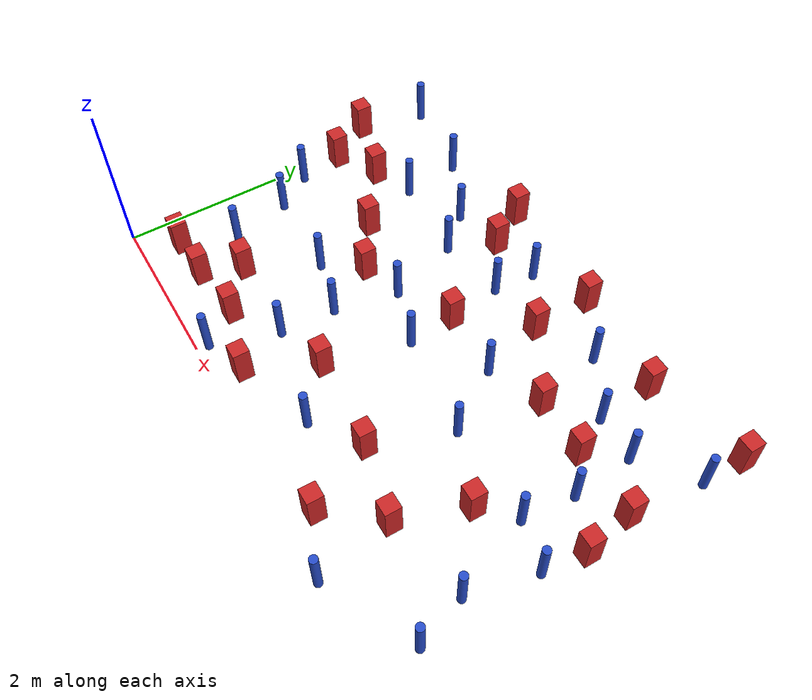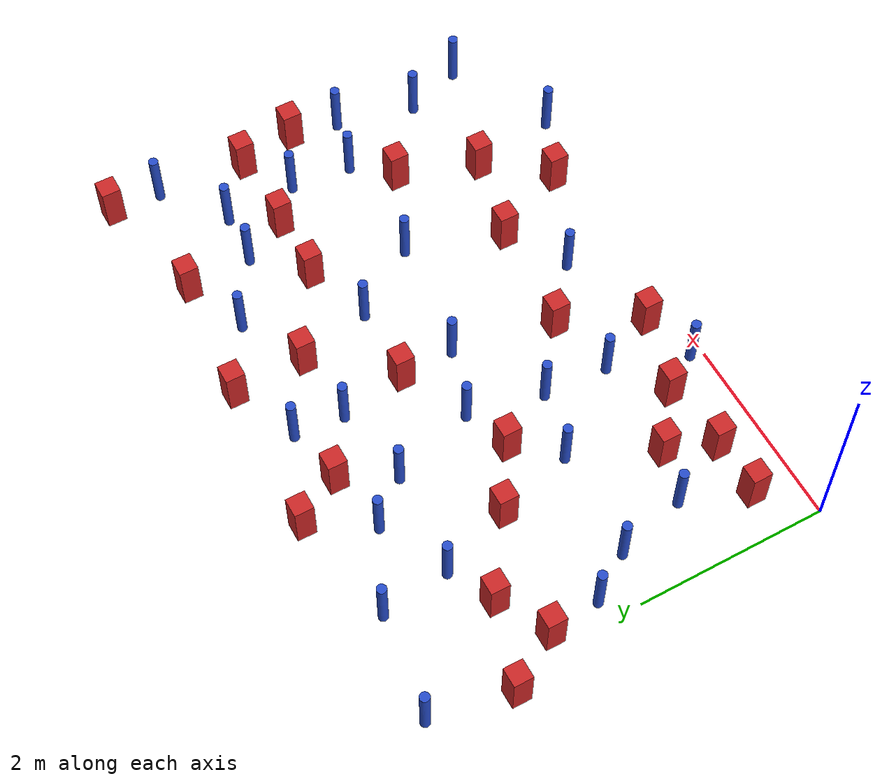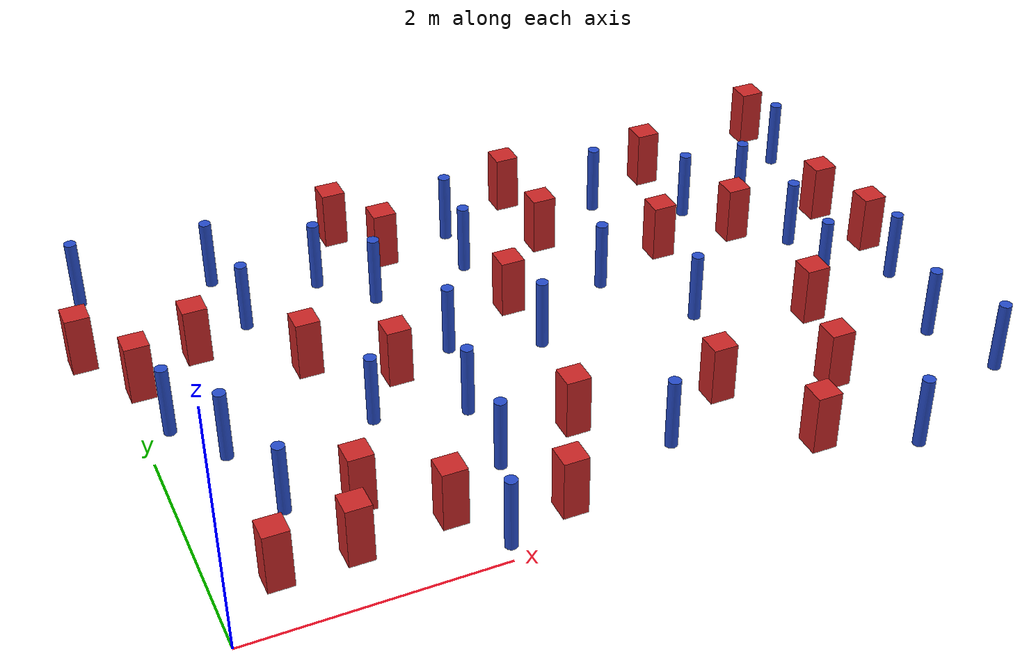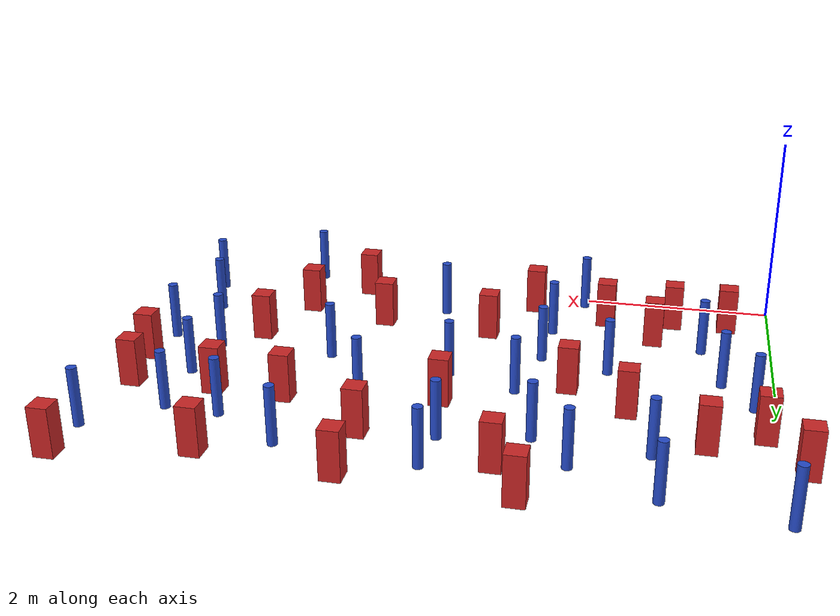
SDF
<sdf version="1.6">
 <model name="dense_2">
  <model name="pole_obstacle0">
   <static>true</static>
   <pose>4.51293915702 2.02923295959 2.88873142074e-08 -9.90536689683e-09 4.60219948993e-07 -1.20965994957e-07</pose>
   <link name="link">
    <pose>0 0 0.3 0 -0 0</pose>
    <inertial>
     <mass>1</mass>
     <inertia><ixx>0.145833</ixx><ixy>0</ixy><ixz>0</ixz><iyy>0.145833</iyy><iyz>0</iyz><izz>0.125</izz></inertia>
    </inertial>
    <collision name="collision">
     <geometry><cylinder><radius>0.05</radius><length>.6</length></cylinder></geometry>
    </collision>
    <visual name="visual">
     <geometry><cylinder><radius>0.05</radius><length>.6</length></cylinder></geometry>
     <material>
      <script><name>Gazebo/Blue</name><uri>file://media/materials/scripts/gazebo.material</uri></script>
     </material>
    </visual>
   </link>
  </model>
  <model name="square_post_obstacle4">
   <static>true</static>
   <pose>2.9893026464 1.14969682416 8.22691968438e-08 7.2212513382e-06 -7.54495500217e-07 2.29674213826e-05</pose>
   <link name="link">
    <pose>0 0 0.25 0 -0 0</pose>
    <inertial>
     <mass>100</mass>
     <inertia>
      <ixx>0.166667</ixx>
      <ixy>0</ixy>
      <ixz>0</ixz>
      <iyy>0.166667</iyy>
      <iyz>0</iyz>
      <izz>0.166667</izz>
     </inertia>
    </inertial>
    <collision name="collision"><geometry><box><size>.2 .2 .5</size></box></geometry></collision>
    <visual name="visual">
     <geometry><box><size>.2 .2 .5</size></box></geometry>
     <material>
      <script><name>Gazebo/Red</name><uri>file://media/materials/scripts/gazebo.material</uri></script>
     </material>
    </visual>
   </link>
  </model>
  <model name="square_post_obstacle7">
   <static>true</static>
   <pose>1.76672728972 0.576758571005 8.22691968438e-08 7.22125133819e-06 -7.54495500217e-07 2.29674213826e-05</pose>
   <link name="link">
    <pose>0 0 0.25 0 -0 0</pose>
    <inertial>
     <mass>100</mass>
     <inertia>
      <ixx>0.166667</ixx>
      <ixy>0</ixy>
      <ixz>0</ixz>
      <iyy>0.166667</iyy>
      <iyz>0</iyz>
      <izz>0.166667</izz>
     </inertia>
    </inertial>
    <collision name="collision"><geometry><box><size>.2 .2 .5</size></box></geometry></collision>
    <visual name="visual">
     <geometry><box><size>.2 .2 .5</size></box></geometry>
     <material>
      <script><name>Gazebo/Red</name><uri>file://media/materials/scripts/gazebo.material</uri></script>
     </material>
    </visual>
   </link>
  </model>
  <model name="square_post_obstacle11">
   <static>true</static>
   <pose>2.5807275553 0.337207331482 8.22691968438e-08 7.2212513382e-06 -7.54495500217e-07 2.29674213826e-05</pose>
   <link name="link">
    <pose>0 0 0.25 0 -0 0</pose>
    <inertial>
     <mass>100</mass>
     <inertia>
      <ixx>0.166667</ixx>
      <ixy>0</ixy>
      <ixz>0</ixz>
      <iyy>0.166667</iyy>
      <iyz>0</iyz>
      <izz>0.166667</izz>
     </inertia>
    </inertial>
    <collision name="collision"><geometry><box><size>.2 .2 .5</size></box></geometry></collision>
    <visual name="visual">
     <geometry><box><size>.2 .2 .5</size></box></geometry>
     <material>
      <script><name>Gazebo/Red</name><uri>file://media/materials/scripts/gazebo.material</uri></script>
     </material>
    </visual>
   </link>
  </model>
  <model name="square_post_obstacle12">
   <static>true</static>
   <pose>5.37687361299 1.67094948875 8.22691968438e-08 7.2212513382e-06 -7.54495500217e-07 2.29674213826e-05</pose>
   <link name="link">
    <pose>0 0 0.25 0 -0 0</pose>
    <inertial>
     <mass>100</mass>
     <inertia>
      <ixx>0.166667</ixx>
      <ixy>0</ixy>
      <ixz>0</ixz>
      <iyy>0.166667</iyy>
      <iyz>0</iyz>
      <izz>0.166667</izz>
     </inertia>
    </inertial>
    <collision name="collision"><geometry><box><size>.2 .2 .5</size></box></geometry></collision>
    <visual name="visual">
     <geometry><box><size>.2 .2 .5</size></box></geometry>
     <material>
      <script><name>Gazebo/Red</name><uri>file://media/materials/scripts/gazebo.material</uri></script>
     </material>
    </visual>
   </link>
  </model>
  <model name="pole_obstacle15">
   <static>true</static>
   <pose>1.03543532854 4.12226089961 2.88873142074e-08 -9.90536689905e-09 4.60219948988e-07 -1.20965994961e-07</pose>
   <link name="link">
    <pose>0 0 0.3 0 -0 0</pose>
    <inertial>
     <mass>1</mass>
     <inertia><ixx>0.145833</ixx><ixy>0</ixy><ixz>0</ixz><iyy>0.145833</iyy><iyz>0</iyz><izz>0.125</izz></inertia>
    </inertial>
    <collision name="collision">
     <geometry><cylinder><radius>0.05</radius><length>.6</length></cylinder></geometry>
    </collision>
    <visual name="visual">
     <geometry><cylinder><radius>0.05</radius><length>.6</length></cylinder></geometry>
     <material>
      <script><name>Gazebo/Blue</name><uri>file://media/materials/scripts/gazebo.material</uri></script>
     </material>
    </visual>
   </link>
  </model>
  <model name="square_post_obstacle25">
   <static>true</static>
   <pose>1.03732156511 0.49760889649 8.22691968438e-08 7.2212513382e-06 -7.54495500217e-07 2.29674213826e-05</pose>
   <link name="link">
    <pose>0 0 0.25 0 -0 0</pose>
    <inertial>
     <mass>100</mass>
     <inertia>
      <ixx>0.166667</ixx>
      <ixy>0</ixy>
      <ixz>0</ixz>
      <iyy>0.166667</iyy>
      <iyz>0</iyz>
      <izz>0.166667</izz>
     </inertia>
    </inertial>
    <collision name="collision"><geometry><box><size>.2 .2 .5</size></box></geometry></collision>
    <visual name="visual">
     <geometry><box><size>.2 .2 .5</size></box></geometry>
     <material>
      <script><name>Gazebo/Red</name><uri>file://media/materials/scripts/gazebo.material</uri></script>
     </material>
    </visual>
   </link>
  </model>
  <model name="pole_obstacle40">
   <static>true</static>
   <pose>1.1254228163 3.40366411227 2.88873142074e-08 -9.90536689791e-09 4.6021994899e-07 -1.20965994959e-07</pose>
   <link name="link">
    <pose>0 0 0.3 0 -0 0</pose>
    <inertial>
     <mass>1</mass>
     <inertia><ixx>0.145833</ixx><ixy>0</ixy><ixz>0</ixz><iyy>0.145833</iyy><iyz>0</iyz><izz>0.125</izz></inertia>
    </inertial>
    <collision name="collision">
     <geometry><cylinder><radius>0.05</radius><length>.6</length></cylinder></geometry>
    </collision>
    <visual name="visual">
     <geometry><cylinder><radius>0.05</radius><length>.6</length></cylinder></geometry>
     <material>
      <script><name>Gazebo/Blue</name><uri>file://media/materials/scripts/gazebo.material</uri></script>
     </material>
    </visual>
   </link>
  </model>
  <model name="pole_obstacle41">
   <static>true</static>
   <pose>5.74391420218 3.44088116287 2.88873142074e-08 -9.90536690245e-09 4.6021994898e-07 -1.20965994966e-07</pose>
   <link name="link">
    <pose>0 0 0.3 0 -0 0</pose>
    <inertial>
     <mass>1</mass>
     <inertia><ixx>0.145833</ixx><ixy>0</ixy><ixz>0</ixz><iyy>0.145833</iyy><iyz>0</iyz><izz>0.125</izz></inertia>
    </inertial>
    <collision name="collision">
     <geometry><cylinder><radius>0.05</radius><length>.6</length></cylinder></geometry>
    </collision>
    <visual name="visual">
     <geometry><cylinder><radius>0.05</radius><length>.6</length></cylinder></geometry>
     <material>
      <script><name>Gazebo/Blue</name><uri>file://media/materials/scripts/gazebo.material</uri></script>
     </material>
    </visual>
   </link>
  </model>
  <model name="square_post_obstacle45">
   <static>true</static>
   <pose>0.651753841996 3.17246568594 8.22691968438e-08 7.2212513382e-06 -7.54495500217e-07 2.29674213826e-05</pose>
   <link name="link">
    <pose>0 0 0.25 0 -0 0</pose>
    <inertial>
     <mass>100</mass>
     <inertia>
      <ixx>0.166667</ixx>
      <ixy>0</ixy>
      <ixz>0</ixz>
      <iyy>0.166667</iyy>
      <iyz>0</iyz>
      <izz>0.166667</izz>
     </inertia>
    </inertial>
    <collision name="collision"><geometry><box><size>.2 .2 .5</size></box></geometry></collision>
    <visual name="visual">
     <geometry><box><size>.2 .2 .5</size></box></geometry>
     <material>
      <script><name>Gazebo/Red</name><uri>file://media/materials/scripts/gazebo.material</uri></script>
     </material>
    </visual>
   </link>
  </model>
  <model name="pole_obstacle50">
   <static>true</static>
   <pose>2.2150086224 3.3212447633 2.88873142074e-08 -9.90536690232e-09 4.6021994898e-07 -1.20965994968e-07</pose>
   <link name="link">
    <pose>0 0 0.3 0 -0 0</pose>
    <inertial>
     <mass>1</mass>
     <inertia><ixx>0.145833</ixx><ixy>0</ixy><ixz>0</ixz><iyy>0.145833</iyy><iyz>0</iyz><izz>0.125</izz></inertia>
    </inertial>
    <collision name="collision">
     <geometry><cylinder><radius>0.05</radius><length>.6</length></cylinder></geometry>
    </collision>
    <visual name="visual">
     <geometry><cylinder><radius>0.05</radius><length>.6</length></cylinder></geometry>
     <material>
      <script><name>Gazebo/Blue</name><uri>file://media/materials/scripts/gazebo.material</uri></script>
     </material>
    </visual>
   </link>
  </model>
  <model name="square_post_obstacle54">
   <static>true</static>
   <pose>1.39793324621 2.6527842161 8.22691968438e-08 7.2212513382e-06 -7.54495500217e-07 2.29674213826e-05</pose>
   <link name="link">
    <pose>0 0 0.25 0 -0 0</pose>
    <inertial>
     <mass>100</mass>
     <inertia>
      <ixx>0.166667</ixx>
      <ixy>0</ixy>
      <ixz>0</ixz>
      <iyy>0.166667</iyy>
      <iyz>0</iyz>
      <izz>0.166667</izz>
     </inertia>
    </inertial>
    <collision name="collision"><geometry><box><size>.2 .2 .5</size></box></geometry></collision>
    <visual name="visual">
     <geometry><box><size>.2 .2 .5</size></box></geometry>
     <material>
      <script><name>Gazebo/Red</name><uri>file://media/materials/scripts/gazebo.material</uri></script>
     </material>
    </visual>
   </link>
  </model>
  <model name="square_post_obstacle64">
   <static>true</static>
   <pose>2.00207417969 2.27022836218 8.22691968438e-08 7.2212513382e-06 -7.54495500217e-07 2.29674213826e-05</pose>
   <link name="link">
    <pose>0 0 0.25 0 -0 0</pose>
    <inertial>
     <mass>100</mass>
     <inertia>
      <ixx>0.166667</ixx>
      <ixy>0</ixy>
      <ixz>0</ixz>
      <iyy>0.166667</iyy>
      <iyz>0</iyz>
      <izz>0.166667</izz>
     </inertia>
    </inertial>
    <collision name="collision"><geometry><box><size>.2 .2 .5</size></box></geometry></collision>
    <visual name="visual">
     <geometry><box><size>.2 .2 .5</size></box></geometry>
     <material>
      <script><name>Gazebo/Red</name><uri>file://media/materials/scripts/gazebo.material</uri></script>
     </material>
    </visual>
   </link>
  </model>
  <model name="square_post_obstacle76">
   <static>true</static>
   <pose>6.28206339309 3.00636175448 8.22691968438e-08 7.2212513382e-06 -7.54495500217e-07 2.29674213826e-05</pose>
   <link name="link">
    <pose>0 0 0.25 0 -0 0</pose>
    <inertial>
     <mass>100</mass>
     <inertia>
      <ixx>0.166667</ixx>
      <ixy>0</ixy>
      <ixz>0</ixz>
      <iyy>0.166667</iyy>
      <iyz>0</iyz>
      <izz>0.166667</izz>
     </inertia>
    </inertial>
    <collision name="collision"><geometry><box><size>.2 .2 .5</size></box></geometry></collision>
    <visual name="visual">
     <geometry><box><size>.2 .2 .5</size></box></geometry>
     <material>
      <script><name>Gazebo/Red</name><uri>file://media/materials/scripts/gazebo.material</uri></script>
     </material>
    </visual>
   </link>
  </model>
  <model name="pole_obstacle78">
   <static>true</static>
   <pose>0.203501877367 2.33106990192 2.88873142074e-08 -9.90536692545e-09 4.60219948925e-07 -1.2096599499e-07</pose>
   <link name="link">
    <pose>0 0 0.3 0 -0 0</pose>
    <inertial>
     <mass>1</mass>
     <inertia><ixx>0.145833</ixx><ixy>0</ixy><ixz>0</ixz><iyy>0.145833</iyy><iyz>0</iyz><izz>0.125</izz></inertia>
    </inertial>
    <collision name="collision">
     <geometry><cylinder><radius>0.05</radius><length>.6</length></cylinder></geometry>
    </collision>
    <visual name="visual">
     <geometry><cylinder><radius>0.05</radius><length>.6</length></cylinder></geometry>
     <material>
      <script><name>Gazebo/Blue</name><uri>file://media/materials/scripts/gazebo.material</uri></script>
     </material>
    </visual>
   </link>
  </model>
  <model name="square_post_obstacle78">
   <static>true</static>
   <pose>5.08093108655 0.841347274774 8.22691968438e-08 7.2212513382e-06 -7.54495500217e-07 2.29674213826e-05</pose>
   <link name="link">
    <pose>0 0 0.25 0 -0 0</pose>
    <inertial>
     <mass>100</mass>
     <inertia>
      <ixx>0.166667</ixx>
      <ixy>0</ixy>
      <ixz>0</ixz>
      <iyy>0.166667</iyy>
      <iyz>0</iyz>
      <izz>0.166667</izz>
     </inertia>
    </inertial>
    <collision name="collision"><geometry><box><size>.2 .2 .5</size></box></geometry></collision>
    <visual name="visual">
     <geometry><box><size>.2 .2 .5</size></box></geometry>
     <material>
      <script><name>Gazebo/Red</name><uri>file://media/materials/scripts/gazebo.material</uri></script>
     </material>
    </visual>
   </link>
  </model>
  <model name="pole_obstacle82">
   <static>true</static>
   <pose>4.01587517536 2.75673903796 2.88873142074e-08 -9.90536689988e-09 4.60219948986e-07 -1.20965994963e-07</pose>
   <link name="link">
    <pose>0 0 0.3 0 -0 0</pose>
    <inertial>
     <mass>1</mass>
     <inertia><ixx>0.145833</ixx><ixy>0</ixy><ixz>0</ixz><iyy>0.145833</iyy><iyz>0</iyz><izz>0.125</izz></inertia>
    </inertial>
    <collision name="collision">
     <geometry><cylinder><radius>0.05</radius><length>.6</length></cylinder></geometry>
    </collision>
    <visual name="visual">
     <geometry><cylinder><radius>0.05</radius><length>.6</length></cylinder></geometry>
     <material>
      <script><name>Gazebo/Blue</name><uri>file://media/materials/scripts/gazebo.material</uri></script>
     </material>
    </visual>
   </link>
  </model>
  <model name="square_post_obstacle80">
   <static>true</static>
   <pose>0.455643509742 0.483676884049 8.22691968438e-08 7.2212513382e-06 -7.54495500217e-07 2.29674213826e-05</pose>
   <link name="link">
    <pose>0 0 0.25 0 -0 0</pose>
    <inertial>
     <mass>100</mass>
     <inertia>
      <ixx>0.166667</ixx>
      <ixy>0</ixy>
      <ixz>0</ixz>
      <iyy>0.166667</iyy>
      <iyz>0</iyz>
      <izz>0.166667</izz>
     </inertia>
    </inertial>
    <collision name="collision"><geometry><box><size>.2 .2 .5</size></box></geometry></collision>
    <visual name="visual">
     <geometry><box><size>.2 .2 .5</size></box></geometry>
     <material>
      <script><name>Gazebo/Red</name><uri>file://media/materials/scripts/gazebo.material</uri></script>
     </material>
    </visual>
   </link>
  </model>
  <model name="pole_obstacle86">
   <static>true</static>
   <pose>5.25705738953 -0.0849788573613 2.88873142074e-08 -9.90536689832e-09 4.60219948989e-07 -1.20965994961e-07</pose>
   <link name="link">
    <pose>0 0 0.3 0 -0 0</pose>
    <inertial>
     <mass>1</mass>
     <inertia><ixx>0.145833</ixx><ixy>0</ixy><ixz>0</ixz><iyy>0.145833</iyy><iyz>0</iyz><izz>0.125</izz></inertia>
    </inertial>
    <collision name="collision">
     <geometry><cylinder><radius>0.05</radius><length>.6</length></cylinder></geometry>
    </collision>
    <visual name="visual">
     <geometry><cylinder><radius>0.05</radius><length>.6</length></cylinder></geometry>
     <material>
      <script><name>Gazebo/Blue</name><uri>file://media/materials/scripts/gazebo.material</uri></script>
     </material>
    </visual>
   </link>
  </model>
  <model name="pole_obstacle87">
   <static>true</static>
   <pose>6.34231356287 0.455687302859 2.88873142074e-08 -9.90536689483e-09 4.60219948998e-07 -1.20965994956e-07</pose>
   <link name="link">
    <pose>0 0 0.3 0 -0 0</pose>
    <inertial>
     <mass>1</mass>
     <inertia><ixx>0.145833</ixx><ixy>0</ixy><ixz>0</ixz><iyy>0.145833</iyy><iyz>0</iyz><izz>0.125</izz></inertia>
    </inertial>
    <collision name="collision">
     <geometry><cylinder><radius>0.05</radius><length>.6</length></cylinder></geometry>
    </collision>
    <visual name="visual">
     <geometry><cylinder><radius>0.05</radius><length>.6</length></cylinder></geometry>
     <material>
      <script><name>Gazebo/Blue</name><uri>file://media/materials/scripts/gazebo.material</uri></script>
     </material>
    </visual>
   </link>
  </model>
  <model name="pole_obstacle91">
   <static>true</static>
   <pose>3.21618884168 2.19915873179 2.88873142074e-08 -9.90536690232e-09 4.6021994898e-07 -1.20965994968e-07</pose>
   <link name="link">
    <pose>0 0 0.3 0 -0 0</pose>
    <inertial>
     <mass>1</mass>
     <inertia><ixx>0.145833</ixx><ixy>0</ixy><ixz>0</ixz><iyy>0.145833</iyy><iyz>0</iyz><izz>0.125</izz></inertia>
    </inertial>
    <collision name="collision">
     <geometry><cylinder><radius>0.05</radius><length>.6</length></cylinder></geometry>
    </collision>
    <visual name="visual">
     <geometry><cylinder><radius>0.05</radius><length>.6</length></cylinder></geometry>
     <material>
      <script><name>Gazebo/Blue</name><uri>file://media/materials/scripts/gazebo.material</uri></script>
     </material>
    </visual>
   </link>
  </model>
  <model name="square_post_obstacle83">
   <static>true</static>
   <pose>4.6980856419 3.0150080861 8.22691968438e-08 7.2212513382e-06 -7.54495500217e-07 2.29674213826e-05</pose>
   <link name="link">
    <pose>0 0 0.25 0 -0 0</pose>
    <inertial>
     <mass>100</mass>
     <inertia>
      <ixx>0.166667</ixx>
      <ixy>0</ixy>
      <ixz>0</ixz>
      <iyy>0.166667</iyy>
      <iyz>0</iyz>
      <izz>0.166667</izz>
     </inertia>
    </inertial>
    <collision name="collision"><geometry><box><size>.2 .2 .5</size></box></geometry></collision>
    <visual name="visual">
     <geometry><box><size>.2 .2 .5</size></box></geometry>
     <material>
      <script><name>Gazebo/Red</name><uri>file://media/materials/scripts/gazebo.material</uri></script>
     </material>
    </visual>
   </link>
  </model>
  <model name="square_post_obstacle89">
   <static>true</static>
   <pose>6.39162029417 4.45620203469 8.22691968438e-08 7.2212513382e-06 -7.54495500217e-07 2.29674213826e-05</pose>
   <link name="link">
    <pose>0 0 0.25 0 -0 0</pose>
    <inertial>
     <mass>100</mass>
     <inertia>
      <ixx>0.166667</ixx>
      <ixy>0</ixy>
      <ixz>0</ixz>
      <iyy>0.166667</iyy>
      <iyz>0</iyz>
      <izz>0.166667</izz>
     </inertia>
    </inertial>
    <collision name="collision"><geometry><box><size>.2 .2 .5</size></box></geometry></collision>
    <visual name="visual">
     <geometry><box><size>.2 .2 .5</size></box></geometry>
     <material>
      <script><name>Gazebo/Red</name><uri>file://media/materials/scripts/gazebo.material</uri></script>
     </material>
    </visual>
   </link>
  </model>
  <model name="pole_obstacle102">
   <static>true</static>
   <pose>3.56580393262 0.659137649616 2.88873142074e-08 -9.90536689285e-09 4.60219949002e-07 -1.20965994953e-07</pose>
   <link name="link">
    <pose>0 0 0.3 0 -0 0</pose>
    <inertial>
     <mass>1</mass>
     <inertia><ixx>0.145833</ixx><ixy>0</ixy><ixz>0</ixz><iyy>0.145833</iyy><iyz>0</iyz><izz>0.125</izz></inertia>
    </inertial>
    <collision name="collision">
     <geometry><cylinder><radius>0.05</radius><length>.6</length></cylinder></geometry>
    </collision>
    <visual name="visual">
     <geometry><cylinder><radius>0.05</radius><length>.6</length></cylinder></geometry>
     <material>
      <script><name>Gazebo/Blue</name><uri>file://media/materials/scripts/gazebo.material</uri></script>
     </material>
    </visual>
   </link>
  </model>
  <model name="square_post_obstacle94">
   <static>true</static>
   <pose>3.80946990364 3.54113547055 8.22691968438e-08 7.2212513382e-06 -7.54495500217e-07 2.29674213826e-05</pose>
   <link name="link">
    <pose>0 0 0.25 0 -0 0</pose>
    <inertial>
     <mass>100</mass>
     <inertia>
      <ixx>0.166667</ixx>
      <ixy>0</ixy>
      <ixz>0</ixz>
      <iyy>0.166667</iyy>
      <iyz>0</iyz>
      <izz>0.166667</izz>
     </inertia>
    </inertial>
    <collision name="collision"><geometry><box><size>.2 .2 .5</size></box></geometry></collision>
    <visual name="visual">
     <geometry><box><size>.2 .2 .5</size></box></geometry>
     <material>
      <script><name>Gazebo/Red</name><uri>file://media/materials/scripts/gazebo.material</uri></script>
     </material>
    </visual>
   </link>
  </model>
  <model name="square_post_obstacle101">
   <static>true</static>
   <pose>3.79438662336 4.29784079258 8.22691968438e-08 7.2212513382e-06 -7.54495500217e-07 2.29674213826e-05</pose>
   <link name="link">
    <pose>0 0 0.25 0 -0 0</pose>
    <inertial>
     <mass>100</mass>
     <inertia>
      <ixx>0.166667</ixx>
      <ixy>0</ixy>
      <ixz>0</ixz>
      <iyy>0.166667</iyy>
      <iyz>0</iyz>
      <izz>0.166667</izz>
     </inertia>
    </inertial>
    <collision name="collision"><geometry><box><size>.2 .2 .5</size></box></geometry></collision>
    <visual name="visual">
     <geometry><box><size>.2 .2 .5</size></box></geometry>
     <material>
      <script><name>Gazebo/Red</name><uri>file://media/materials/scripts/gazebo.material</uri></script>
     </material>
    </visual>
   </link>
  </model>
  <model name="square_post_obstacle107">
   <static>true</static>
   <pose>5.13730924741 4.16825675708 8.22691968438e-08 7.2212513382e-06 -7.54495500217e-07 2.29674213826e-05</pose>
   <link name="link">
    <pose>0 0 0.25 0 -0 0</pose>
    <inertial>
     <mass>100</mass>
     <inertia>
      <ixx>0.166667</ixx>
      <ixy>0</ixy>
      <ixz>0</ixz>
      <iyy>0.166667</iyy>
      <iyz>0</iyz>
      <izz>0.166667</izz>
     </inertia>
    </inertial>
    <collision name="collision"><geometry><box><size>.2 .2 .5</size></box></geometry></collision>
    <visual name="visual">
     <geometry><box><size>.2 .2 .5</size></box></geometry>
     <material>
      <script><name>Gazebo/Red</name><uri>file://media/materials/scripts/gazebo.material</uri></script>
     </material>
    </visual>
   </link>
  </model>
  <model name="pole_obstacle135">
   <static>true</static>
   <pose>4.49271970296 3.89093577603 2.88873142074e-08 -9.90536690245e-09 4.6021994898e-07 -1.20965994966e-07</pose>
   <link name="link">
    <pose>0 0 0.3 0 -0 0</pose>
    <inertial>
     <mass>1</mass>
     <inertia><ixx>0.145833</ixx><ixy>0</ixy><ixz>0</ixz><iyy>0.145833</iyy><iyz>0</iyz><izz>0.125</izz></inertia>
    </inertial>
    <collision name="collision">
     <geometry><cylinder><radius>0.05</radius><length>.6</length></cylinder></geometry>
    </collision>
    <visual name="visual">
     <geometry><cylinder><radius>0.05</radius><length>.6</length></cylinder></geometry>
     <material>
      <script><name>Gazebo/Blue</name><uri>file://media/materials/scripts/gazebo.material</uri></script>
     </material>
    </visual>
   </link>
  </model>
  <model name="pole_obstacle138">
   <static>true</static>
   <pose>2.31355740847 0.957202852371 2.88873142074e-08 -9.90536689701e-09 4.60219948992e-07 -1.20965994959e-07</pose>
   <link name="link">
    <pose>0 0 0.3 0 -0 0</pose>
    <inertial>
     <mass>1</mass>
     <inertia><ixx>0.145833</ixx><ixy>0</ixy><ixz>0</ixz><iyy>0.145833</iyy><iyz>0</iyz><izz>0.125</izz></inertia>
    </inertial>
    <collision name="collision">
     <geometry><cylinder><radius>0.05</radius><length>.6</length></cylinder></geometry>
    </collision>
    <visual name="visual">
     <geometry><cylinder><radius>0.05</radius><length>.6</length></cylinder></geometry>
     <material>
      <script><name>Gazebo/Blue</name><uri>file://media/materials/scripts/gazebo.material</uri></script>
     </material>
    </visual>
   </link>
  </model>
  <model name="square_post_obstacle121">
   <static>true</static>
   <pose>3.1803211415 2.78216624069 8.22691968438e-08 7.2212513382e-06 -7.54495500217e-07 2.29674213826e-05</pose>
   <link name="link">
    <pose>0 0 0.25 0 -0 0</pose>
    <inertial>
     <mass>100</mass>
     <inertia>
      <ixx>0.166667</ixx>
      <ixy>0</ixy>
      <ixz>0</ixz>
      <iyy>0.166667</iyy>
      <iyz>0</iyz>
      <izz>0.166667</izz>
     </inertia>
    </inertial>
    <collision name="collision"><geometry><box><size>.2 .2 .5</size></box></geometry></collision>
    <visual name="visual">
     <geometry><box><size>.2 .2 .5</size></box></geometry>
     <material>
      <script><name>Gazebo/Red</name><uri>file://media/materials/scripts/gazebo.material</uri></script>
     </material>
    </visual>
   </link>
  </model>
  <model name="square_post_obstacle123">
   <static>true</static>
   <pose>0.124385165504 2.88883878161 8.22691968438e-08 7.2212513382e-06 -7.54495500217e-07 2.29674213826e-05</pose>
   <link name="link">
    <pose>0 0 0.25 0 -0 0</pose>
    <inertial>
     <mass>100</mass>
     <inertia>
      <ixx>0.166667</ixx>
      <ixy>0</ixy>
      <ixz>0</ixz>
      <iyy>0.166667</iyy>
      <iyz>0</iyz>
      <izz>0.166667</izz>
     </inertia>
    </inertial>
    <collision name="collision"><geometry><box><size>.2 .2 .5</size></box></geometry></collision>
    <visual name="visual">
     <geometry><box><size>.2 .2 .5</size></box></geometry>
     <material>
      <script><name>Gazebo/Red</name><uri>file://media/materials/scripts/gazebo.material</uri></script>
     </material>
    </visual>
   </link>
  </model>
  <model name="square_post_obstacle129">
   <static>true</static>
   <pose>1.23033064791 0.987752622683 8.22691968438e-08 7.2212513382e-06 -7.54495500217e-07 2.29674213826e-05</pose>
   <link name="link">
    <pose>0 0 0.25 0 -0 0</pose>
    <inertial>
     <mass>100</mass>
     <inertia>
      <ixx>0.166667</ixx>
      <ixy>0</ixy>
      <ixz>0</ixz>
      <iyy>0.166667</iyy>
      <iyz>0</iyz>
      <izz>0.166667</izz>
     </inertia>
    </inertial>
    <collision name="collision"><geometry><box><size>.2 .2 .5</size></box></geometry></collision>
    <visual name="visual">
     <geometry><box><size>.2 .2 .5</size></box></geometry>
     <material>
      <script><name>Gazebo/Red</name><uri>file://media/materials/scripts/gazebo.material</uri></script>
     </material>
    </visual>
   </link>
  </model>
  <model name="pole_obstacle147">
   <static>true</static>
   <pose>5.18682617834 3.47356428697 2.88873142074e-08 -9.90536690245e-09 4.6021994898e-07 -1.20965994966e-07</pose>
   <link name="link">
    <pose>0 0 0.3 0 -0 0</pose>
    <inertial>
     <mass>1</mass>
     <inertia><ixx>0.145833</ixx><ixy>0</ixy><ixz>0</ixz><iyy>0.145833</iyy><iyz>0</iyz><izz>0.125</izz></inertia>
    </inertial>
    <collision name="collision">
     <geometry><cylinder><radius>0.05</radius><length>.6</length></cylinder></geometry>
    </collision>
    <visual name="visual">
     <geometry><cylinder><radius>0.05</radius><length>.6</length></cylinder></geometry>
     <material>
      <script><name>Gazebo/Blue</name><uri>file://media/materials/scripts/gazebo.material</uri></script>
     </material>
    </visual>
   </link>
  </model>
  <model name="square_post_obstacle137">
   <static>true</static>
   <pose>4.1720260583 1.05422881319 8.22691968438e-08 7.2212513382e-06 -7.54495500217e-07 2.29674213826e-05</pose>
   <link name="link">
    <pose>0 0 0.25 0 -0 0</pose>
    <inertial>
     <mass>100</mass>
     <inertia>
      <ixx>0.166667</ixx>
      <ixy>0</ixy>
      <ixz>0</ixz>
      <iyy>0.166667</iyy>
      <iyz>0</iyz>
      <izz>0.166667</izz>
     </inertia>
    </inertial>
    <collision name="collision"><geometry><box><size>.2 .2 .5</size></box></geometry></collision>
    <visual name="visual">
     <geometry><box><size>.2 .2 .5</size></box></geometry>
     <material>
      <script><name>Gazebo/Red</name><uri>file://media/materials/scripts/gazebo.material</uri></script>
     </material>
    </visual>
   </link>
  </model>
  <model name="pole_obstacle149">
   <static>true</static>
   <pose>0.512354617132 1.87911266087 2.88873142074e-08 -9.90536690151e-09 4.60219948982e-07 -1.20965994965e-07</pose>
   <link name="link">
    <pose>0 0 0.3 0 -0 0</pose>
    <inertial>
     <mass>1</mass>
     <inertia><ixx>0.145833</ixx><ixy>0</ixy><ixz>0</ixz><iyy>0.145833</iyy><iyz>0</iyz><izz>0.125</izz></inertia>
    </inertial>
    <collision name="collision">
     <geometry><cylinder><radius>0.05</radius><length>.6</length></cylinder></geometry>
    </collision>
    <visual name="visual">
     <geometry><cylinder><radius>0.05</radius><length>.6</length></cylinder></geometry>
     <material>
      <script><name>Gazebo/Blue</name><uri>file://media/materials/scripts/gazebo.material</uri></script>
     </material>
    </visual>
   </link>
  </model>
  <model name="pole_obstacle150">
   <static>true</static>
   <pose>-0.0423141037041 4.27244263458 2.88873142074e-08 -9.90536689643e-09 4.60219948994e-07 -1.20965994959e-07</pose>
   <link name="link">
    <pose>0 0 0.3 0 -0 0</pose>
    <inertial>
     <mass>1</mass>
     <inertia><ixx>0.145833</ixx><ixy>0</ixy><ixz>0</ixz><iyy>0.145833</iyy><iyz>0</iyz><izz>0.125</izz></inertia>
    </inertial>
    <collision name="collision">
     <geometry><cylinder><radius>0.05</radius><length>.6</length></cylinder></geometry>
    </collision>
    <visual name="visual">
     <geometry><cylinder><radius>0.05</radius><length>.6</length></cylinder></geometry>
     <material>
      <script><name>Gazebo/Blue</name><uri>file://media/materials/scripts/gazebo.material</uri></script>
     </material>
    </visual>
   </link>
  </model>
  <model name="pole_obstacle151">
   <static>true</static>
   <pose>2.50656428758 2.43183259265 2.88873142074e-08 -9.90536690232e-09 4.6021994898e-07 -1.20965994968e-07</pose>
   <link name="link">
    <pose>0 0 0.3 0 -0 0</pose>
    <inertial>
     <mass>1</mass>
     <inertia><ixx>0.145833</ixx><ixy>0</ixy><ixz>0</ixz><iyy>0.145833</iyy><iyz>0</iyz><izz>0.125</izz></inertia>
    </inertial>
    <collision name="collision">
     <geometry><cylinder><radius>0.05</radius><length>.6</length></cylinder></geometry>
    </collision>
    <visual name="visual">
     <geometry><cylinder><radius>0.05</radius><length>.6</length></cylinder></geometry>
     <material>
      <script><name>Gazebo/Blue</name><uri>file://media/materials/scripts/gazebo.material</uri></script>
     </material>
    </visual>
   </link>
  </model>
  <model name="pole_obstacle153">
   <static>true</static>
   <pose>3.06979076151 3.4708507764 2.88873142074e-08 -9.90536690232e-09 4.6021994898e-07 -1.20965994968e-07</pose>
   <link name="link">
    <pose>0 0 0.3 0 -0 0</pose>
    <inertial>
     <mass>1</mass>
     <inertia><ixx>0.145833</ixx><ixy>0</ixy><ixz>0</ixz><iyy>0.145833</iyy><iyz>0</iyz><izz>0.125</izz></inertia>
    </inertial>
    <collision name="collision">
     <geometry><cylinder><radius>0.05</radius><length>.6</length></cylinder></geometry>
    </collision>
    <visual name="visual">
     <geometry><cylinder><radius>0.05</radius><length>.6</length></cylinder></geometry>
     <material>
      <script><name>Gazebo/Blue</name><uri>file://media/materials/scripts/gazebo.material</uri></script>
     </material>
    </visual>
   </link>
  </model>
  <model name="pole_obstacle154">
   <static>true</static>
   <pose>1.84044727119 3.73817627601 2.88873142074e-08 -9.90536689791e-09 4.6021994899e-07 -1.20965994959e-07</pose>
   <link name="link">
    <pose>0 0 0.3 0 -0 0</pose>
    <inertial>
     <mass>1</mass>
     <inertia><ixx>0.145833</ixx><ixy>0</ixy><ixz>0</ixz><iyy>0.145833</iyy><iyz>0</iyz><izz>0.125</izz></inertia>
    </inertial>
    <collision name="collision">
     <geometry><cylinder><radius>0.05</radius><length>.6</length></cylinder></geometry>
    </collision>
    <visual name="visual">
     <geometry><cylinder><radius>0.05</radius><length>.6</length></cylinder></geometry>
     <material>
      <script><name>Gazebo/Blue</name><uri>file://media/materials/scripts/gazebo.material</uri></script>
     </material>
    </visual>
   </link>
  </model>
  <model name="square_post_obstacle153">
   <static>true</static>
   <pose>2.19668017657 4.3630407731 8.22691968438e-08 7.2212513382e-06 -7.54495500217e-07 2.29674213826e-05</pose>
   <link name="link">
    <pose>0 0 0.25 0 -0 0</pose>
    <inertial>
     <mass>100</mass>
     <inertia>
      <ixx>0.166667</ixx>
      <ixy>0</ixy>
      <ixz>0</ixz>
      <iyy>0.166667</iyy>
      <iyz>0</iyz>
      <izz>0.166667</izz>
     </inertia>
    </inertial>
    <collision name="collision"><geometry><box><size>.2 .2 .5</size></box></geometry></collision>
    <visual name="visual">
     <geometry><box><size>.2 .2 .5</size></box></geometry>
     <material>
      <script><name>Gazebo/Red</name><uri>file://media/materials/scripts/gazebo.material</uri></script>
     </material>
    </visual>
   </link>
  </model>
  <model name="pole_obstacle161">
   <static>true</static>
   <pose>5.80407923226 2.67867637156 2.88873142074e-08 -9.90536690245e-09 4.6021994898e-07 -1.20965994966e-07</pose>
   <link name="link">
    <pose>0 0 0.3 0 -0 0</pose>
    <inertial>
     <mass>1</mass>
     <inertia><ixx>0.145833</ixx><ixy>0</ixy><ixz>0</ixz><iyy>0.145833</iyy><iyz>0</iyz><izz>0.125</izz></inertia>
    </inertial>
    <collision name="collision">
     <geometry><cylinder><radius>0.05</radius><length>.6</length></cylinder></geometry>
    </collision>
    <visual name="visual">
     <geometry><cylinder><radius>0.05</radius><length>.6</length></cylinder></geometry>
     <material>
      <script><name>Gazebo/Blue</name><uri>file://media/materials/scripts/gazebo.material</uri></script>
     </material>
    </visual>
   </link>
  </model>
  <model name="pole_obstacle166">
   <static>true</static>
   <pose>6.12990611764 1.06097854878 2.88873142074e-08 -9.90536689445e-09 4.60219948999e-07 -1.20965994956e-07</pose>
   <link name="link">
    <pose>0 0 0.3 0 -0 0</pose>
    <inertial>
     <mass>1</mass>
     <inertia><ixx>0.145833</ixx><ixy>0</ixy><ixz>0</ixz><iyy>0.145833</iyy><iyz>0</iyz><izz>0.125</izz></inertia>
    </inertial>
    <collision name="collision">
     <geometry><cylinder><radius>0.05</radius><length>.6</length></cylinder></geometry>
    </collision>
    <visual name="visual">
     <geometry><cylinder><radius>0.05</radius><length>.6</length></cylinder></geometry>
     <material>
      <script><name>Gazebo/Blue</name><uri>file://media/materials/scripts/gazebo.material</uri></script>
     </material>
    </visual>
   </link>
  </model>
  <model name="square_post_obstacle159">
   <static>true</static>
   <pose>5.41573912442 3.00063896298 8.22691968438e-08 7.2212513382e-06 -7.54495500217e-07 2.29674213826e-05</pose>
   <link name="link">
    <pose>0 0 0.25 0 -0 0</pose>
    <inertial>
     <mass>100</mass>
     <inertia>
      <ixx>0.166667</ixx>
      <ixy>0</ixy>
      <ixz>0</ixz>
      <iyy>0.166667</iyy>
      <iyz>0</iyz>
      <izz>0.166667</izz>
     </inertia>
    </inertial>
    <collision name="collision"><geometry><box><size>.2 .2 .5</size></box></geometry></collision>
    <visual name="visual">
     <geometry><box><size>.2 .2 .5</size></box></geometry>
     <material>
      <script><name>Gazebo/Red</name><uri>file://media/materials/scripts/gazebo.material</uri></script>
     </material>
    </visual>
   </link>
  </model>
  <model name="pole_obstacle167">
   <static>true</static>
   <pose>0.716878057807 1.13723842153 2.88873142074e-08 -9.90536689855e-09 4.60219948989e-07 -1.20965994962e-07</pose>
   <link name="link">
    <pose>0 0 0.3 0 -0 0</pose>
    <inertial>
     <mass>1</mass>
     <inertia><ixx>0.145833</ixx><ixy>0</ixy><ixz>0</ixz><iyy>0.145833</iyy><iyz>0</iyz><izz>0.125</izz></inertia>
    </inertial>
    <collision name="collision">
     <geometry><cylinder><radius>0.05</radius><length>.6</length></cylinder></geometry>
    </collision>
    <visual name="visual">
     <geometry><cylinder><radius>0.05</radius><length>.6</length></cylinder></geometry>
     <material>
      <script><name>Gazebo/Blue</name><uri>file://media/materials/scripts/gazebo.material</uri></script>
     </material>
    </visual>
   </link>
  </model>
  <model name="pole_obstacle173">
   <static>true</static>
   <pose>5.74182492889 2.03575454787 2.88873142074e-08 -9.90536689683e-09 4.60219948993e-07 -1.20965994957e-07</pose>
   <link name="link">
    <pose>0 0 0.3 0 -0 0</pose>
    <inertial>
     <mass>1</mass>
     <inertia><ixx>0.145833</ixx><ixy>0</ixy><ixz>0</ixz><iyy>0.145833</iyy><iyz>0</iyz><izz>0.125</izz></inertia>
    </inertial>
    <collision name="collision">
     <geometry><cylinder><radius>0.05</radius><length>.6</length></cylinder></geometry>
    </collision>
    <visual name="visual">
     <geometry><cylinder><radius>0.05</radius><length>.6</length></cylinder></geometry>
     <material>
      <script><name>Gazebo/Blue</name><uri>file://media/materials/scripts/gazebo.material</uri></script>
     </material>
    </visual>
   </link>
  </model>
  <model name="pole_obstacle181">
   <static>true</static>
   <pose>2.3427119979 1.64300826968 2.88873142074e-08 -9.90536689395e-09 4.60219949e-07 -1.20965994953e-07</pose>
   <link name="link">
    <pose>0 0 0.3 0 -0 0</pose>
    <inertial>
     <mass>1</mass>
     <inertia><ixx>0.145833</ixx><ixy>0</ixy><ixz>0</ixz><iyy>0.145833</iyy><iyz>0</iyz><izz>0.125</izz></inertia>
    </inertial>
    <collision name="collision">
     <geometry><cylinder><radius>0.05</radius><length>.6</length></cylinder></geometry>
    </collision>
    <visual name="visual">
     <geometry><cylinder><radius>0.05</radius><length>.6</length></cylinder></geometry>
     <material>
      <script><name>Gazebo/Blue</name><uri>file://media/materials/scripts/gazebo.material</uri></script>
     </material>
    </visual>
   </link>
  </model>
  <model name="square_post_obstacle184">
   <static>true</static>
   <pose>2.4825526089 3.8719069279 8.22691968438e-08 7.2212513382e-06 -7.54495500217e-07 2.29674213826e-05</pose>
   <link name="link">
    <pose>0 0 0.25 0 -0 0</pose>
    <inertial>
     <mass>100</mass>
     <inertia>
      <ixx>0.166667</ixx>
      <ixy>0</ixy>
      <ixz>0</ixz>
      <iyy>0.166667</iyy>
      <iyz>0</iyz>
      <izz>0.166667</izz>
     </inertia>
    </inertial>
    <collision name="collision"><geometry><box><size>.2 .2 .5</size></box></geometry></collision>
    <visual name="visual">
     <geometry><box><size>.2 .2 .5</size></box></geometry>
     <material>
      <script><name>Gazebo/Red</name><uri>file://media/materials/scripts/gazebo.material</uri></script>
     </material>
    </visual>
   </link>
  </model>
  <model name="square_post_obstacle186">
   <static>true</static>
   <pose>4.57189359863 0.230722008592 8.22691968438e-08 7.2212513382e-06 -7.54495500217e-07 2.29674213826e-05</pose>
   <link name="link">
    <pose>0 0 0.25 0 -0 0</pose>
    <inertial>
     <mass>100</mass>
     <inertia>
      <ixx>0.166667</ixx>
      <ixy>0</ixy>
      <ixz>0</ixz>
      <iyy>0.166667</iyy>
      <iyz>0</iyz>
      <izz>0.166667</izz>
     </inertia>
    </inertial>
    <collision name="collision"><geometry><box><size>.2 .2 .5</size></box></geometry></collision>
    <visual name="visual">
     <geometry><box><size>.2 .2 .5</size></box></geometry>
     <material>
      <script><name>Gazebo/Red</name><uri>file://media/materials/scripts/gazebo.material</uri></script>
     </material>
    </visual>
   </link>
  </model>
  <model name="square_post_obstacle189">
   <static>true</static>
   <pose>6.39486991731 2.39849248064 8.22691968438e-08 7.2212513382e-06 -7.54495500217e-07 2.29674213826e-05</pose>
   <link name="link">
    <pose>0 0 0.25 0 -0 0</pose>
    <inertial>
     <mass>100</mass>
     <inertia>
      <ixx>0.166667</ixx>
      <ixy>0</ixy>
      <ixz>0</ixz>
      <iyy>0.166667</iyy>
      <iyz>0</iyz>
      <izz>0.166667</izz>
     </inertia>
    </inertial>
    <collision name="collision"><geometry><box><size>.2 .2 .5</size></box></geometry></collision>
    <visual name="visual">
     <geometry><box><size>.2 .2 .5</size></box></geometry>
     <material>
      <script><name>Gazebo/Red</name><uri>file://media/materials/scripts/gazebo.material</uri></script>
     </material>
    </visual>
   </link>
  </model>
  <model name="square_post_obstacle193">
   <static>true</static>
   <pose>-0.206575776411 3.43270791852 8.22691968438e-08 7.2212513382e-06 -7.54495500217e-07 2.29674213826e-05</pose>
   <link name="link">
    <pose>0 0 0.25 0 -0 0</pose>
    <inertial>
     <mass>100</mass>
     <inertia>
      <ixx>0.166667</ixx>
      <ixy>0</ixy>
      <ixz>0</ixz>
      <iyy>0.166667</iyy>
      <iyz>0</iyz>
      <izz>0.166667</izz>
     </inertia>
    </inertial>
    <collision name="collision"><geometry><box><size>.2 .2 .5</size></box></geometry></collision>
    <visual name="visual">
     <geometry><box><size>.2 .2 .5</size></box></geometry>
     <material>
      <script><name>Gazebo/Red</name><uri>file://media/materials/scripts/gazebo.material</uri></script>
     </material>
    </visual>
   </link>
  </model>
  <model name="pole_obstacle202">
   <static>true</static>
   <pose>2.04005259112 0.148329566258 2.88873142074e-08 -9.90536689387e-09 4.60219949e-07 -1.20965994954e-07</pose>
   <link name="link">
    <pose>0 0 0.3 0 -0 0</pose>
    <inertial>
     <mass>1</mass>
     <inertia><ixx>0.145833</ixx><ixy>0</ixy><ixz>0</ixz><iyy>0.145833</iyy><iyz>0</iyz><izz>0.125</izz></inertia>
    </inertial>
    <collision name="collision">
     <geometry><cylinder><radius>0.05</radius><length>.6</length></cylinder></geometry>
    </collision>
    <visual name="visual">
     <geometry><cylinder><radius>0.05</radius><length>.6</length></cylinder></geometry>
     <material>
      <script><name>Gazebo/Blue</name><uri>file://media/materials/scripts/gazebo.material</uri></script>
     </material>
    </visual>
   </link>
  </model>
  <model name="pole_obstacle203">
   <static>true</static>
   <pose>1.64454007914 1.82885435802 2.88873142074e-08 -9.90536689672e-09 4.60219948993e-07 -1.20965994959e-07</pose>
   <link name="link">
    <pose>0 0 0.3 0 -0 0</pose>
    <inertial>
     <mass>1</mass>
     <inertia><ixx>0.145833</ixx><ixy>0</ixy><ixz>0</ixz><iyy>0.145833</iyy><iyz>0</iyz><izz>0.125</izz></inertia>
    </inertial>
    <collision name="collision">
     <geometry><cylinder><radius>0.05</radius><length>.6</length></cylinder></geometry>
    </collision>
    <visual name="visual">
     <geometry><cylinder><radius>0.05</radius><length>.6</length></cylinder></geometry>
     <material>
      <script><name>Gazebo/Blue</name><uri>file://media/materials/scripts/gazebo.material</uri></script>
     </material>
    </visual>
   </link>
  </model>
  <model name="pole_obstacle211">
   <static>true</static>
   <pose>3.11225511799 3.99405729196 2.88873142074e-08 -9.90536690801e-09 4.60219948966e-07 -1.20965994976e-07</pose>
   <link name="link">
    <pose>0 0 0.3 0 -0 0</pose>
    <inertial>
     <mass>1</mass>
     <inertia><ixx>0.145833</ixx><ixy>0</ixy><ixz>0</ixz><iyy>0.145833</iyy><iyz>0</iyz><izz>0.125</izz></inertia>
    </inertial>
    <collision name="collision">
     <geometry><cylinder><radius>0.05</radius><length>.6</length></cylinder></geometry>
    </collision>
    <visual name="visual">
     <geometry><cylinder><radius>0.05</radius><length>.6</length></cylinder></geometry>
     <material>
      <script><name>Gazebo/Blue</name><uri>file://media/materials/scripts/gazebo.material</uri></script>
     </material>
    </visual>
   </link>
  </model>
  <model name="pole_obstacle216">
   <static>true</static>
   <pose>6.3210711939 1.8857669132 2.88873142074e-08 -9.90536689445e-09 4.60219948999e-07 -1.20965994956e-07</pose>
   <link name="link">
    <pose>0 0 0.3 0 -0 0</pose>
    <inertial>
     <mass>1</mass>
     <inertia><ixx>0.145833</ixx><ixy>0</ixy><ixz>0</ixz><iyy>0.145833</iyy><iyz>0</iyz><izz>0.125</izz></inertia>
    </inertial>
    <collision name="collision">
     <geometry><cylinder><radius>0.05</radius><length>.6</length></cylinder></geometry>
    </collision>
    <visual name="visual">
     <geometry><cylinder><radius>0.05</radius><length>.6</length></cylinder></geometry>
     <material>
      <script><name>Gazebo/Blue</name><uri>file://media/materials/scripts/gazebo.material</uri></script>
     </material>
    </visual>
   </link>
  </model>
  <model name="pole_obstacle217">
   <static>true</static>
   <pose>6.38347608431 3.93608233605 2.88873142074e-08 -9.90536690245e-09 4.6021994898e-07 -1.20965994966e-07</pose>
   <link name="link">
    <pose>0 0 0.3 0 -0 0</pose>
    <inertial>
     <mass>1</mass>
     <inertia><ixx>0.145833</ixx><ixy>0</ixy><ixz>0</ixz><iyy>0.145833</iyy><iyz>0</iyz><izz>0.125</izz></inertia>
    </inertial>
    <collision name="collision">
     <geometry><cylinder><radius>0.05</radius><length>.6</length></cylinder></geometry>
    </collision>
    <visual name="visual">
     <geometry><cylinder><radius>0.05</radius><length>.6</length></cylinder></geometry>
     <material>
      <script><name>Gazebo/Blue</name><uri>file://media/materials/scripts/gazebo.material</uri></script>
     </material>
    </visual>
   </link>
  </model>
 </model>
</sdf>
